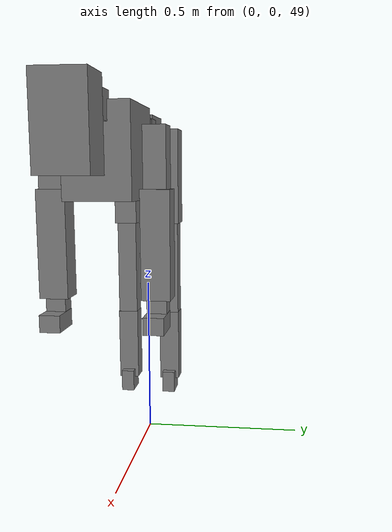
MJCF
<mujoco model="dog">

    <default>
        <joint armature="0.02" stiffness="1" damping="0.2" limited="true"/>
        <geom condim="3" friction="1 0.05 0.05" margin="0.01"/>
        <motor ctrllimited="true" ctrlrange="-1.0 1.0" forcelimited="true" gear="50"/>
    </default>

    <compiler inertiafromgeom="true" angle="radian"/>

    <option timestep="0.016" iterations="50" tolerance="1e-10" solver="Newton" jacobian="dense" cone="pyramidal"/>

    <size nconmax="20000" njmax="60000" nstack="5000000"/>
    <visual>
        <map force="0.1" zfar="30"/>
        <rgba haze="0.15 0.25 0.35 1"/>
        <quality shadowsize="2048"/>
        <global offwidth="800" offheight="800"/>
    </visual>

    <asset>
        <texture type="skybox" builtin="gradient" rgb1="0.3 0.5 0.7" rgb2="0 0 0" width="512" height="512"/>
        <texture name="texplane" type="2d" builtin="checker" rgb1=".2 .3 .4" rgb2=".1 0.15 0.2" width="512" height="512"
                 mark="cross" markrgb=".8 .8 .8"/>
        <texture name="texgeom" type="cube" builtin="flat" mark="cross" width="127" height="1278" rgb1="0.8 0.6 0.4"
                 rgb2="0.8 0.6 0.4" markrgb="1 1 1" random="0.01"/>

        <material name="matplane" reflectance="0.3" texture="texplane" texrepeat="1 1" texuniform="true"/>
        <material name="matgeom" texture="texgeom" texuniform="true" rgba="0.8 0.6 .4 1"/>
    </asset>

    <worldbody>
        <geom name="floor" pos="0 0 0" size="0 0 .25" type="plane" material="matplane" condim="3"/>

        <light directional="false" diffuse=".2 .2 .2" specular="0 0 0" pos="0 0 5" dir="0 0 -1" castshadow="false"/>
        <light mode="targetbodycom" target="torso" directional="false" diffuse=".8 .8 .8" specular="0.3 0.3 0.3"
               pos="0 0 4.0" dir="0 0 -1"/>

        <body name="root" pos="0 0 50">
            <freejoint name="root_1"/>
            <geom type="box" pos="0 0 -0.02" size="0.0774  0.0358  0.063" density="2030"/>

            <body name="spine1" pos="0.054 0 0">
                <joint name="spine1_y" axis="0 1 0" range="0 0.7" limited="true"/>
                <geom type="box" pos="0.02375 0 -0.03" size="0.04375  0.0375  0.05985" density="2030"/>

                <body name="spine2" pos="0.0612 0 0">
                    <joint name="spine2_y" axis="0 1 0" range="-0.15 0.15" limited="true"/>
                    <geom type="box" pos="0.03555  0  -0.04" size="0.04055  0.039  0.06615" density="2030"/>

                    <body name="spine3" pos="0.0730 0 0">
                        <joint name="spine3_y" axis="0 1 0" range="-0.15 0.15" limited="true"/>
                        <geom type="box" pos="0.03555  0  -0.057" size="0.04555  0.0445  0.081" density="2030"/>

                        <body name="spine4" pos="0.0780 0 0">
                            <joint name="spine4_y" axis="0 1 0" range="-0.15 0.15" limited="true"/>
                            <geom type="box" pos="0.05265  0  -0.07" size="0.05265  0.045  0.09135" density="2030"/>

                            <body name="torso" pos="0.1082 0 0">
                                <joint name="torso_y" axis="0 1 0" range="-0.15 0.15" limited="true"/>
                                <geom type="box" pos="0.11925  0  -0.085" size="0.11925  0.085  0.11745"
                                      density="2030"/>

                                <body name="neck1" pos="0.2160  0   0.0180">
                                    <joint name="neck1_y" axis="0 1 0" range="-1.2  -1" limited="true"/>
                                    <geom type="box" pos="0.0423  0  0" size="0.0423  0.03  0.036" density="2325"/>

                                    <body name="neck2" pos="0.0853  0  0">
                                        <joint name="neck2_y" axis="0 1 0" range="0.1  0" limited="true"/>
                                        <geom type="box" pos="0.0423  0  0" size="0.0423  0.03  0.036" density="2325"/>

                                        <body name="head" pos="0.0853  0  0">
                                            <joint name="head_y" axis="0 1 0" range="-0.3  -0.2" limited="true"/>
                                            <geom type="box" pos="0.0531  0  -0.055" size="0.0531  0.06  0.1044"
                                                  density="4030"/>

                                        </body>
                                    </body>
                                </body>

                                <body name="front_shoulder" pos="0.156  0   -0.0480">
                                    <joint name="front_shoulder_y" axis="0 1 0" range="-1 1.5" limited="true"/>
                                    <geom type="box" pos="0 0.13 -0.0632" size="0.0334  0.0285  0.0898" density="1158"/>
                                    <geom type="box" pos="0 -0.13 -0.0632" size="0.0334  0.0285  0.0898"
                                          density="1158"/>

                                    <body name="front_elbow" pos="0  0  -0.1264">
                                        <joint name="front_elbow_y" axis="0 1 0" range="-2 0" limited="true"/>
                                        <geom type="box" pos="0 0.13 -0.1367" size="0.0359  0.0367  0.1367"
                                              density="1081"/>
                                        <geom type="box" pos="0 -0.13 -0.1367" size="0.0359  0.0367  0.1367"
                                              density="1081"/>

                                        <body name="front_wrist" pos="0  0  -0.2735">
                                            <joint name="front_wrist_y" axis="0 1 0" range="-0.2 0" limited="true"/>
                                            <geom type="box" pos="0 0.13 -0.0249" size="0.0226  0.0251  0.0380"
                                                  density="1664"/>
                                            <geom type="box" pos="0 -0.13 -0.0249" size="0.0226  0.0251  0.0380"
                                                  density="1664"/>

                                            <body name="front_finger_end" pos="0  0  -0.0497">
                                                <joint name="front_finger_y" axis="0 1 0" range="-0.4 1"
                                                       limited="true"/>
                                                <geom type="box" pos="0.0262  0.13  -0.0068"
                                                      size="0.0480  0.0262  0.0218" density="1515"/>
                                                <geom type="box" pos="0.0262  -0.13  -0.0068"
                                                      size="0.0480  0.0262  0.0218" density="1515"/>

                                            </body>

                                        </body>
                                    </body>
                                </body>

                            </body>
                        </body>
                    </body>
                </body>
            </body>

            <body name="back_hip" pos="-0.03 0 -0.018">
                <joint name="back_hip_y" axis="0 1 0" range="-1.5 0.3" limited="true"/>
                <geom type="box" pos="0 0.07 -0.1287" size="0.0446  0.0350  0.1515" density="1154"/>
                <geom type="box" pos="0 -0.07 -0.1287" size="0.0446  0.0350  0.1515" density="1154"/>

                <body name="back_knee" pos="0  0  -0.2575">
                    <joint name="back_knee_y" axis="0 1 0" range="0 2.8" limited="true"/>
                    <geom type="box" pos="0 0.07 -0.1667" size="0.0307  0.0302  0.1822" density="1227"/>
                    <geom type="box" pos="0 -0.07 -0.1667" size="0.0307  0.0302  0.1822" density="1227"/>

                    <body name="back_ankle" pos="0  0  -0.3333">
                        <joint name="back_ankle_y" axis="0 1 0" range="-2.2 0" limited="true"/>
                        <geom type="box" pos="0 0.07 -0.1034" size="0.0315  0.0315  0.1147" density="1284"/>
                        <geom type="box" pos="0 -0.07 -0.1034" size="0.0315  0.0315  0.1147" density="1284"/>

                        <body name="back_toe_end" pos="0  0  -0.2068">
                            <joint name="back_toe_y" axis="0 1 0" range="-0.4 1" limited="true"/>
                            <geom type="box" pos="0.0202  0.07  -0.0189" size="0.0371  0.0202  0.0339" density="1515"/>
                            <geom type="box" pos="0.0202  -0.07  -0.0189" size="0.0371  0.0202  0.0339" density="1515"/>

                        </body>
                    </body>
                </body>
            </body>

            <body name="tail1" pos="-0.074 0 -0.006">
                <joint name="tail1_y" axis="0 1 0" range="-0.2 0.2" limited="true"/>
                <geom type="box" pos="-0.0536  0  0" size="0.045  0.025  0.0175" density="1587"/>

                <body name="tail2" pos="-0.09 0 0">
                    <joint name="tail2_y" axis="0 1 0" range="-0.2 0.2" limited="true"/>
                    <geom type="box" pos="-0.0536  0  0" size="0.045  0.025  0.0175" density="1587"/>

                    <body name="tail3" pos="-0.09 0 0">
                        <joint name="tail3_y" axis="0 1 0" range="-0.2 0.2" limited="true"/>
                        <geom type="box" pos="-0.0536  0  0" size="0.045  0.025  0.0175" density="1587"/>

                        <body name="tail4" pos="-0.09 0 0">
                            <joint name="tail4_y" axis="0 1 0" range="-0.2 0.2" limited="true"/>
                            <geom type="box" pos="-0.0536  0  0" size="0.045  0.025  0.0175" density="1587"/>

                        </body>
                    </body>
                </body>
            </body>
        </body>
    </worldbody>

    <actuator>
        <motor joint="spine1_y" forcerange="-150 150     "/>
        <motor joint="spine2_y" forcerange="-150 150     "/>
        <motor joint="spine3_y" forcerange="-150 150     "/>
        <motor joint="spine4_y" forcerange="-150 150     "/>
        <motor joint="torso_y" forcerange="-150 150     "/>
        <motor joint="neck1_y" forcerange="-100 100       "/>
        <motor joint="neck2_y" forcerange="-100 100       "/>
        <motor joint="head_y" forcerange="-150 150       "/>
        <motor joint="front_shoulder_y" forcerange="-102.23 188.01"/>
        <motor joint="front_elbow_y" forcerange="-190.89 175.74"/>
        <motor joint="front_wrist_y" forcerange="-63.86 136.70"/>
        <motor joint="front_finger_y" forcerange="-56.18 43.54"/>
        <motor joint="back_hip_y" forcerange="-363.43 302.87"/>
        <motor joint="back_knee_y" forcerange="-289.88 349.97"/>
        <motor joint="back_angle_y" forcerange="-231.99 171.29"/>
        <motor joint="back_toe_y" forcerange="-53.74 28.26"/>
        <motor joint="tail1_y" forcerange="-50 50     "/>
        <motor joint="tail2_y" forcerange="-50 50     "/>
        <motor joint="tail3_y" forcerange="-50 50     "/>
        <motor joint="tail4_y" forcerange="-50 50     "/>
    </actuator>
</mujoco>
